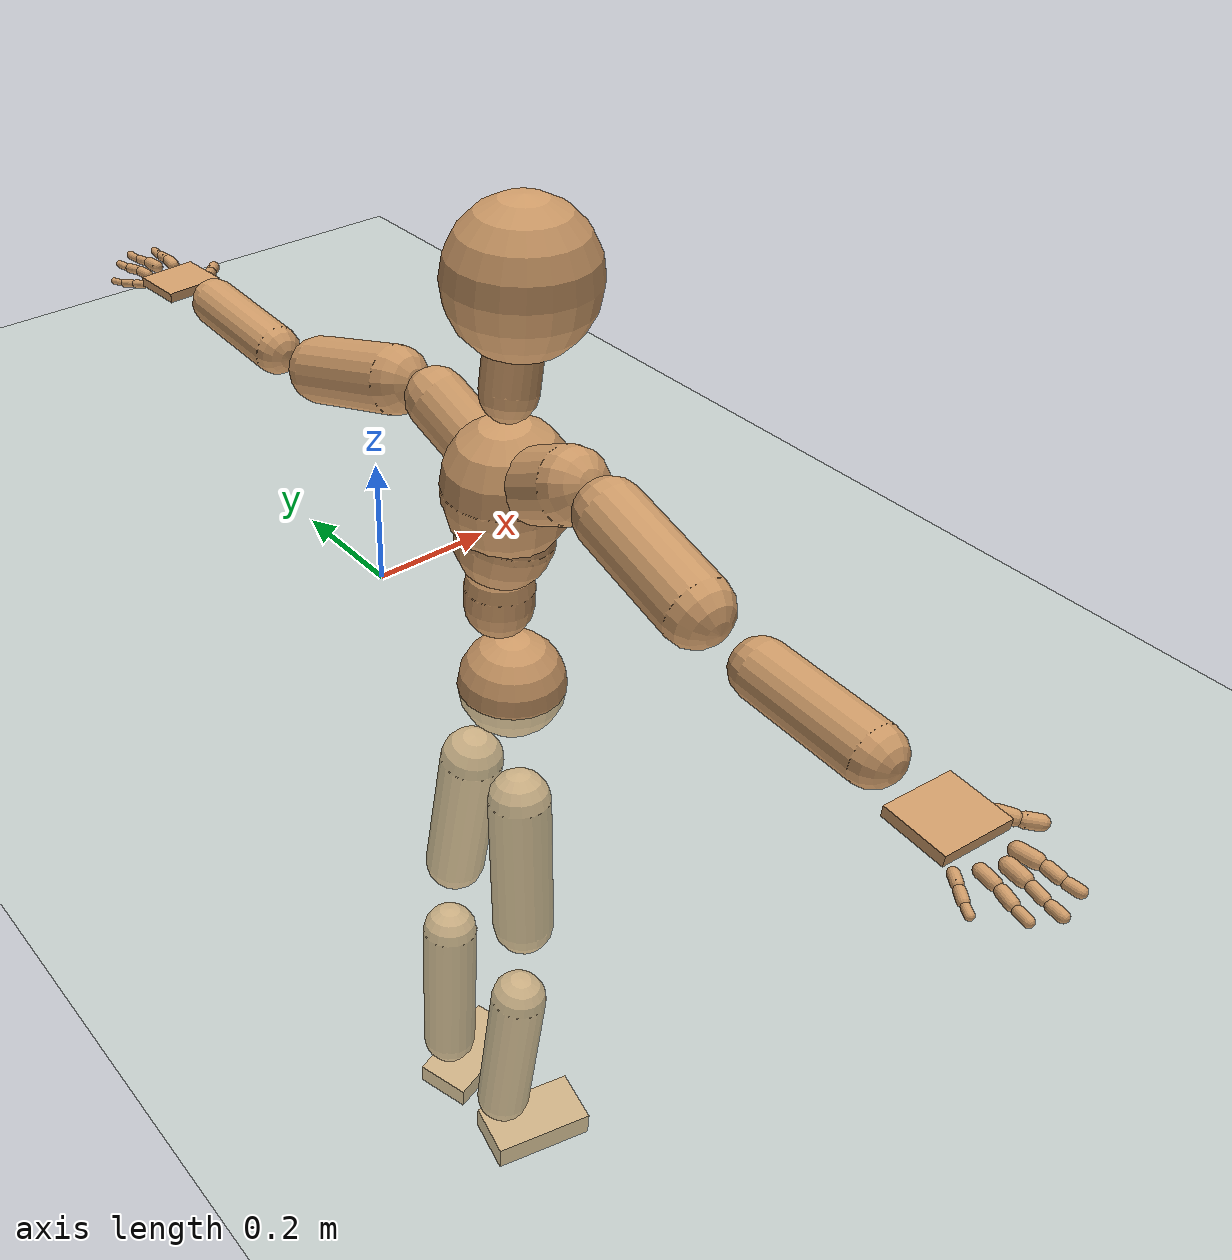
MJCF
<mujoco model="humanoid">
  <compiler coordinate="local" angle="radian"/>
  <default>
    <joint damping="0.0" armature="0.01" stiffness="0.0" limited="true"/>
    <geom conaffinity="1" condim="3" contype="7" margin="0.001" rgba="0.8 0.6 .4 1"/>
  </default>
  <asset>
    <texture type="skybox" builtin="gradient" rgb1=".4 .5 .6" rgb2="0 0 0" width="100" height="100"/>
    <texture builtin="flat" height="1278" mark="cross" markrgb="1 1 1" name="texgeom" random="0.01" rgb1="0.8 0.6 0.4" rgb2="0.8 0.6 0.4" type="cube" width="127"/>
    <texture builtin="checker" height="100" name="texplane" rgb1="0 0 0" rgb2="0.8 0.8 0.8" type="2d" width="100"/>
    <material name="MatPlane" reflectance="0.5" shininess="1" specular="1" texrepeat="60 60" texture="texplane"/>
    <material name="geom" texture="texgeom" texuniform="true"/>
  </asset>
  <worldbody>
    <light cutoff="100" diffuse="1 1 1" dir="-0 0 -1.3" directional="true" exponent="1" pos="0 0 1.3" specular=".1 .1 .1"/>
    <geom conaffinity="1" condim="3" name="floor" pos="0 0 0" rgba="0.8 0.9 0.8 1" size="100 100 .2" type="plane" material="MatPlane"/>
    <body name="Pelvis" pos="0.0004 -0.3276 0.0006">
      <freejoint name="Pelvis"/>
      <geom type="sphere" contype="1" conaffinity="1" density="500" size="0.0798" pos="0.0000 0.0000 0.0000" name="Pelvis"/>
      <body name="L_Hip" pos="-0.0272 0.0435 -0.0861">
        <joint name="L_Hip_x" type="hinge" pos="0 0 0" axis="1 0 0" stiffness="800" damping="80" armature="0.02" range="-180.0000 180.0000"/>
        <joint name="L_Hip_y" type="hinge" pos="0 0 0" axis="0 1 0" stiffness="800" damping="80" armature="0.02" range="-180.0000 180.0000"/>
        <joint name="L_Hip_z" type="hinge" pos="0 0 0" axis="0 0 1" stiffness="800" damping="80" armature="0.02" range="-180.0000 180.0000"/>
        <geom type="capsule" contype="1" conaffinity="1" density="500" fromto="-0.0018 0.0127 -0.0855 -0.0073 0.0509 -0.3419" size="0.049" name="L_Hip"/>
        <body name="L_Knee" pos="-0.0091 0.0636 -0.4274">
          <joint name="L_Knee_x" type="hinge" pos="0 0 0" axis="1 0 0" stiffness="800" damping="80" armature="0.02" range="-180.0000 180.0000"/>
          <joint name="L_Knee_y" type="hinge" pos="0 0 0" axis="0 1 0" stiffness="800" damping="80" armature="0.02" range="-180.0000 180.0000"/>
          <joint name="L_Knee_z" type="hinge" pos="0 0 0" axis="0 0 1" stiffness="800" damping="80" armature="0.02" range="-180.0000 180.0000"/>
          <geom type="capsule" contype="1" conaffinity="1" density="500" fromto="-0.0070 -0.0075 -0.0877 -0.0282 -0.0302 -0.3506" size="0.0468" name="L_Knee"/>
          <body name="L_Ankle" pos="-0.0352 -0.0377 -0.4383">
            <joint name="L_Ankle_x" type="hinge" pos="0 0 0" axis="1 0 0" stiffness="800" damping="80" armature="0.02" range="-180.0000 180.0000"/>
            <joint name="L_Ankle_y" type="hinge" pos="0 0 0" axis="0 1 0" stiffness="800" damping="80" armature="0.02" range="-180.0000 180.0000"/>
            <joint name="L_Ankle_z" type="hinge" pos="0 0 0" axis="0 0 1" stiffness="800" damping="80" armature="0.02" range="-180.0000 180.0000"/>
            <geom type="box" contype="1" conaffinity="1" density="500" pos="0.0664 0.0192 -0.0316" size="0.0902 0.0483 0.0205" quat="0.9901 0.0000 0.0000 0.1403" name="L_Ankle"/>
            <body name="L_Toe" pos="0.1327 0.0384 -0.0633">
              <joint name="L_Toe_x" type="hinge" pos="0 0 0" axis="1 0 0" stiffness="500" damping="50" armature="0.02" range="-180.0000 180.0000"/>
              <joint name="L_Toe_y" type="hinge" pos="0 0 0" axis="0 1 0" stiffness="500" damping="50" armature="0.02" range="-180.0000 180.0000"/>
              <joint name="L_Toe_z" type="hinge" pos="0 0 0" axis="0 0 1" stiffness="500" damping="50" armature="0.02" range="-180.0000 180.0000"/>
              <geom type="box" contype="1" conaffinity="1" density="500" pos="0.0000 0.0000 0.0318" size="0.0009 0.0023 0.001" quat="0.9894 0.0000 0.0000 0.1451" name="L_Toe"/>
            </body>
          </body>
        </body>
      </body>
      <body name="R_Hip" pos="-0.0225 -0.0448 -0.0956">
        <joint name="R_Hip_x" type="hinge" pos="0 0 0" axis="1 0 0" stiffness="800" damping="80" armature="0.02" range="-180.0000 180.0000"/>
        <joint name="R_Hip_y" type="hinge" pos="0 0 0" axis="0 1 0" stiffness="800" damping="80" armature="0.02" range="-180.0000 180.0000"/>
        <joint name="R_Hip_z" type="hinge" pos="0 0 0" axis="0 0 1" stiffness="800" damping="80" armature="0.02" range="-180.0000 180.0000"/>
        <geom type="capsule" contype="1" conaffinity="1" density="500" fromto="-0.0030 -0.0100 -0.0820 -0.0119 -0.0399 -0.3279" size="0.0483" name="R_Hip"/>
        <body name="R_Knee" pos="-0.0149 -0.0499 -0.4099">
          <joint name="R_Knee_x" type="hinge" pos="0 0 0" axis="1 0 0" stiffness="800" damping="80" armature="0.02" range="-180.0000 180.0000"/>
          <joint name="R_Knee_y" type="hinge" pos="0 0 0" axis="0 1 0" stiffness="800" damping="80" armature="0.02" range="-180.0000 180.0000"/>
          <joint name="R_Knee_z" type="hinge" pos="0 0 0" axis="0 0 1" stiffness="800" damping="80" armature="0.02" range="-180.0000 180.0000"/>
          <geom type="capsule" contype="1" conaffinity="1" density="500" fromto="-0.0067 0.0031 -0.0907 -0.0269 0.0125 -0.3628" size="0.0459" name="R_Knee"/>
          <body name="R_Ankle" pos="-0.0336 0.0156 -0.4535">
            <joint name="R_Ankle_x" type="hinge" pos="0 0 0" axis="1 0 0" stiffness="800" damping="80" armature="0.02" range="-180.0000 180.0000"/>
            <joint name="R_Ankle_y" type="hinge" pos="0 0 0" axis="0 1 0" stiffness="800" damping="80" armature="0.02" range="-180.0000 180.0000"/>
            <joint name="R_Ankle_z" type="hinge" pos="0 0 0" axis="0 0 1" stiffness="800" damping="80" armature="0.02" range="-180.0000 180.0000"/>
            <geom type="box" contype="1" conaffinity="1" density="500" pos="0.0694 -0.0159 -0.0312" size="0.0902 0.0483 0.0249" quat="0.9937 0.0000 0.0000 -0.1122" name="R_Ankle"/>
            <body name="R_Toe" pos="0.1388 -0.0318 -0.0624">
              <joint name="R_Toe_x" type="hinge" pos="0 0 0" axis="1 0 0" stiffness="500" damping="50" armature="0.02" range="-180.0000 180.0000"/>
              <joint name="R_Toe_y" type="hinge" pos="0 0 0" axis="0 1 0" stiffness="500" damping="50" armature="0.02" range="-180.0000 180.0000"/>
              <joint name="R_Toe_z" type="hinge" pos="0 0 0" axis="0 0 1" stiffness="500" damping="50" armature="0.02" range="-180.0000 180.0000"/>
              <geom type="box" contype="1" conaffinity="1" density="500" pos="0.0000 0.0000 0.0269" size="0.0009 0.0023 0.001" quat="0.9946 0.0000 0.0000 -0.1040" name="R_Toe"/>
            </body>
          </body>
        </body>
      </body>
      <body name="Torso" pos="-0.0269 0 0.0996">
        <joint name="Torso_x" type="hinge" pos="0 0 0" axis="1 0 0" stiffness="1000" damping="100" armature="0.02" range="-180.0000 180.0000"/>
        <joint name="Torso_y" type="hinge" pos="0 0 0" axis="0 1 0" stiffness="1000" damping="100" armature="0.02" range="-180.0000 180.0000"/>
        <joint name="Torso_z" type="hinge" pos="0 0 0" axis="0 0 1" stiffness="1000" damping="100" armature="0.02" range="-180.0000 180.0000"/>
        <geom type="capsule" contype="1" conaffinity="1" density="500" fromto="0.0021 0.0013 0.0804 0.0014 0.0009 0.0536" size="0.0494" name="Torso"/>
        <body name="Spine" pos="0.0035 0.0022 0.134">
          <joint name="Spine_x" type="hinge" pos="0 0 0" axis="1 0 0" stiffness="1000" damping="100" armature="0.02" range="-180.0000 180.0000"/>
          <joint name="Spine_y" type="hinge" pos="0 0 0" axis="0 1 0" stiffness="1000" damping="100" armature="0.02" range="-180.0000 180.0000"/>
          <joint name="Spine_z" type="hinge" pos="0 0 0" axis="0 0 1" stiffness="1000" damping="100" armature="0.02" range="-180.0000 180.0000"/>
          <geom type="capsule" contype="1" conaffinity="1" density="500" fromto="0.0058 -0.0028 0.0312 0.0039 -0.0019 0.0208" size="0.0686" name="Spine"/>
          <body name="Chest" pos="0.0097 -0.0047 0.052">
            <joint name="Chest_x" type="hinge" pos="0 0 0" axis="1 0 0" stiffness="1000" damping="100" armature="0.02" range="-180.0000 180.0000"/>
            <joint name="Chest_y" type="hinge" pos="0 0 0" axis="0 1 0" stiffness="1000" damping="100" armature="0.02" range="-180.0000 180.0000"/>
            <joint name="Chest_z" type="hinge" pos="0 0 0" axis="0 0 1" stiffness="1000" damping="100" armature="0.02" range="-180.0000 180.0000"/>
            <geom type="capsule" contype="1" conaffinity="1" density="500" fromto="-0.0047 -0.0004 0.0584 -0.0032 -0.0003 0.0389" size="0.0881" name="Chest"/>
            <body name="Neck" pos="-0.0131 -0.005 0.1516">
              <joint name="Neck_x" type="hinge" pos="0 0 0" axis="1 0 0" stiffness="500" damping="50" armature="0.02" range="-180.0000 180.0000"/>
              <joint name="Neck_y" type="hinge" pos="0 0 0" axis="0 1 0" stiffness="500" damping="50" armature="0.02" range="-180.0000 180.0000"/>
              <joint name="Neck_z" type="hinge" pos="0 0 0" axis="0 0 1" stiffness="500" damping="50" armature="0.02" range="-180.0000 180.0000"/>
              <geom type="capsule" contype="1" conaffinity="1" density="500" fromto="0.0072 0.0038 0.0329 0.0287 0.0151 0.1315" size="0.0384" name="Neck"/>
              <body name="Head" pos="0.0358 0.0189 0.1644">
                <joint name="Head_x" type="hinge" pos="0 0 0" axis="1 0 0" stiffness="500" damping="50" armature="0.02" range="-180.0000 180.0000"/>
                <joint name="Head_y" type="hinge" pos="0 0 0" axis="0 1 0" stiffness="500" damping="50" armature="0.02" range="-180.0000 180.0000"/>
                <joint name="Head_z" type="hinge" pos="0 0 0" axis="0 0 1" stiffness="500" damping="50" armature="0.02" range="-180.0000 180.0000"/>
                <geom type="sphere" contype="1" conaffinity="1" density="500" size="0.0992" pos="0.0000 0.0000 0.0000" name="Head"/>
              </body>
            </body>
            <body name="L_Thorax" pos="-0.0029 0.0388 0.0702">
              <joint name="L_Thorax_x" type="hinge" pos="0 0 0" axis="1 0 0" stiffness="500" damping="50" armature="0.02" range="-180.0000 180.0000"/>
              <joint name="L_Thorax_y" type="hinge" pos="0 0 0" axis="0 1 0" stiffness="500" damping="50" armature="0.02" range="-180.0000 180.0000"/>
              <joint name="L_Thorax_z" type="hinge" pos="0 0 0" axis="0 0 1" stiffness="500" damping="50" armature="0.02" range="-180.0000 180.0000"/>
              <geom type="capsule" contype="1" conaffinity="1" density="500" fromto="-0.0028 0.0246 0.0119 -0.0113 0.0984 0.0478" size="0.0424" name="L_Thorax"/>
              <body name="L_Shoulder" pos="-0.0141 0.1229 0.0597">
                <joint name="L_Shoulder_x" type="hinge" pos="0 0 0" axis="1 0 0" stiffness="500" damping="50" armature="0.02" range="-180.0000 180.0000"/>
                <joint name="L_Shoulder_y" type="hinge" pos="0 0 0" axis="0 1 0" stiffness="500" damping="50" armature="0.02" range="-180.0000 180.0000"/>
                <joint name="L_Shoulder_z" type="hinge" pos="0 0 0" axis="0 0 1" stiffness="500" damping="50" armature="0.02" range="-180.0000 180.0000"/>
                <geom type="capsule" contype="1" conaffinity="1" density="500" fromto="-0.0068 0.0521 -0.0145 -0.0272 0.2083 -0.0579" size="0.0466" name="L_Shoulder"/>
                <body name="L_Elbow" pos="-0.034 0.2604 -0.0724">
                  <joint name="L_Elbow_x" type="hinge" pos="0 0 0" axis="1 0 0" stiffness="500" damping="50" armature="0.02" range="-720.0000 720.0000"/>
                  <joint name="L_Elbow_y" type="hinge" pos="0 0 0" axis="0 1 0" stiffness="500" damping="50" armature="0.02" range="-720.0000 720.0000"/>
                  <joint name="L_Elbow_z" type="hinge" pos="0 0 0" axis="0 0 1" stiffness="500" damping="50" armature="0.02" range="-720.0000 720.0000"/>
                  <geom type="capsule" contype="1" conaffinity="1" density="500" fromto="-0.0013 0.0554 0.0040 -0.0053 0.2217 0.0158" size="0.0352" name="L_Elbow"/>
                  <body name="L_Wrist" pos="-0.0066 0.2771 0.0198">
                    <joint name="L_Wrist_x" type="hinge" pos="0 0 0" axis="1 0 0" stiffness="300" damping="30" armature="0.02" range="-180.0000 180.0000"/>
                    <joint name="L_Wrist_y" type="hinge" pos="0 0 0" axis="0 1 0" stiffness="300" damping="30" armature="0.02" range="-180.0000 180.0000"/>
                    <joint name="L_Wrist_z" type="hinge" pos="0 0 0" axis="0 0 1" stiffness="300" damping="30" armature="0.02" range="-180.0000 180.0000"/>
                    <geom type="box" contype="1" conaffinity="1" density="500" pos="-0.0031 0.0442 -0.0059" size="0.0399 0.044 0.0069" quat="0.7316 0.0000 0.0000 -0.6818" name="L_Wrist"/>
                    <body name="L_Index1" pos="0.0187 0.1034 -0.009">
                      <joint name="L_Index1_x" type="hinge" pos="0 0 0" axis="1 0 0" stiffness="100" damping="10" armature="0.02" range="-180.0000 180.0000"/>
                      <joint name="L_Index1_y" type="hinge" pos="0 0 0" axis="0 1 0" stiffness="100" damping="10" armature="0.02" range="-180.0000 180.0000"/>
                      <joint name="L_Index1_z" type="hinge" pos="0 0 0" axis="0 0 1" stiffness="100" damping="10" armature="0.02" range="-180.0000 180.0000"/>
                      <geom type="capsule" contype="1" conaffinity="1" density="500" fromto="0.0007 0.0066 0.0003 0.0028 0.0264 0.0010" size="0.0089" name="L_Index1"/>
                      <body name="L_Index2" pos="0.0034 0.033 0.0013">
                        <joint name="L_Index2_x" type="hinge" pos="0 0 0" axis="1 0 0" stiffness="100" damping="10" armature="0.02" range="-180.0000 180.0000"/>
                        <joint name="L_Index2_y" type="hinge" pos="0 0 0" axis="0 1 0" stiffness="100" damping="10" armature="0.02" range="-180.0000 180.0000"/>
                        <joint name="L_Index2_z" type="hinge" pos="0 0 0" axis="0 0 1" stiffness="100" damping="10" armature="0.02" range="-180.0000 180.0000"/>
                        <geom type="capsule" contype="1" conaffinity="1" density="500" fromto="-0.0000 0.0047 -0.0005 -0.0000 0.0187 -0.0021" size="0.0074" name="L_Index2"/>
                        <body name="L_Index3" pos="0 0.0234 -0.0026">
                          <joint name="L_Index3_x" type="hinge" pos="0 0 0" axis="1 0 0" stiffness="100" damping="10" armature="0.02" range="-180.0000 180.0000"/>
                          <joint name="L_Index3_y" type="hinge" pos="0 0 0" axis="0 1 0" stiffness="100" damping="10" armature="0.02" range="-180.0000 180.0000"/>
                          <joint name="L_Index3_z" type="hinge" pos="0 0 0" axis="0 0 1" stiffness="100" damping="10" armature="0.02" range="-180.0000 180.0000"/>
                          <geom type="capsule" contype="1" conaffinity="1" density="500" fromto="0.0004 0.0051 -0.0001 0.0016 0.0203 -0.0005" size="0.0064" name="L_Index3"/>
                        </body>
                      </body>
                    </body>
                    <body name="L_Middle1" pos="-0.0043 0.1115 -0.007">
                      <joint name="L_Middle1_x" type="hinge" pos="0 0 0" axis="1 0 0" stiffness="100" damping="10" armature="0.02" range="-180.0000 180.0000"/>
                      <joint name="L_Middle1_y" type="hinge" pos="0 0 0" axis="0 1 0" stiffness="100" damping="10" armature="0.02" range="-180.0000 180.0000"/>
                      <joint name="L_Middle1_z" type="hinge" pos="0 0 0" axis="0 0 1" stiffness="100" damping="10" armature="0.02" range="-180.0000 180.0000"/>
                      <geom type="capsule" contype="1" conaffinity="1" density="500" fromto="-0.0009 0.0063 -0.0000 -0.0035 0.0253 -0.0000" size="0.009" name="L_Middle1"/>
                      <body name="L_Middle2" pos="-0.0044 0.0316 0">
                        <joint name="L_Middle2_x" type="hinge" pos="0 0 0" axis="1 0 0" stiffness="100" damping="10" armature="0.02" range="-180.0000 180.0000"/>
                        <joint name="L_Middle2_y" type="hinge" pos="0 0 0" axis="0 1 0" stiffness="100" damping="10" armature="0.02" range="-180.0000 180.0000"/>
                        <joint name="L_Middle2_z" type="hinge" pos="0 0 0" axis="0 0 1" stiffness="100" damping="10" armature="0.02" range="-180.0000 180.0000"/>
                        <geom type="capsule" contype="1" conaffinity="1" density="500" fromto="-0.0009 0.0049 -0.0005 -0.0035 0.0195 -0.0020" size="0.0068" name="L_Middle2"/>
                        <body name="L_Middle3" pos="-0.0044 0.0244 -0.0025">
                          <joint name="L_Middle3_x" type="hinge" pos="0 0 0" axis="1 0 0" stiffness="100" damping="10" armature="0.02" range="-180.0000 180.0000"/>
                          <joint name="L_Middle3_y" type="hinge" pos="0 0 0" axis="0 1 0" stiffness="100" damping="10" armature="0.02" range="-180.0000 180.0000"/>
                          <joint name="L_Middle3_z" type="hinge" pos="0 0 0" axis="0 0 1" stiffness="100" damping="10" armature="0.02" range="-180.0000 180.0000"/>
                          <geom type="capsule" contype="1" conaffinity="1" density="500" fromto="-0.0005 0.0053 -0.0001 -0.0019 0.0211 -0.0004" size="0.0062" name="L_Middle3"/>
                        </body>
                      </body>
                    </body>
                    <body name="L_Pinky1" pos="-0.0436 0.0866 -0.0146">
                      <joint name="L_Pinky1_x" type="hinge" pos="0 0 0" axis="1 0 0" stiffness="100" damping="10" armature="0.02" range="-180.0000 180.0000"/>
                      <joint name="L_Pinky1_y" type="hinge" pos="0 0 0" axis="0 1 0" stiffness="100" damping="10" armature="0.02" range="-180.0000 180.0000"/>
                      <joint name="L_Pinky1_z" type="hinge" pos="0 0 0" axis="0 0 1" stiffness="100" damping="10" armature="0.02" range="-180.0000 180.0000"/>
                      <geom type="capsule" contype="1" conaffinity="1" density="500" fromto="-0.0023 0.0033 -0.0003 -0.0093 0.0133 -0.0012" size="0.0065" name="L_Pinky1"/>
                      <body name="L_Pinky2" pos="-0.0117 0.0166 -0.0015">
                        <joint name="L_Pinky2_x" type="hinge" pos="0 0 0" axis="1 0 0" stiffness="100" damping="10" armature="0.02" range="-180.0000 180.0000"/>
                        <joint name="L_Pinky2_y" type="hinge" pos="0 0 0" axis="0 1 0" stiffness="100" damping="10" armature="0.02" range="-180.0000 180.0000"/>
                        <joint name="L_Pinky2_z" type="hinge" pos="0 0 0" axis="0 0 1" stiffness="100" damping="10" armature="0.02" range="-180.0000 180.0000"/>
                        <geom type="capsule" contype="1" conaffinity="1" density="500" fromto="-0.0022 0.0033 -0.0003 -0.0089 0.0130 -0.0013" size="0.0063" name="L_Pinky2"/>
                        <body name="L_Pinky3" pos="-0.0111 0.0163 -0.0016">
                          <joint name="L_Pinky3_x" type="hinge" pos="0 0 0" axis="1 0 0" stiffness="100" damping="10" armature="0.02" range="-180.0000 180.0000"/>
                          <joint name="L_Pinky3_y" type="hinge" pos="0 0 0" axis="0 1 0" stiffness="100" damping="10" armature="0.02" range="-180.0000 180.0000"/>
                          <joint name="L_Pinky3_z" type="hinge" pos="0 0 0" axis="0 0 1" stiffness="100" damping="10" armature="0.02" range="-180.0000 180.0000"/>
                          <geom type="capsule" contype="1" conaffinity="1" density="500" fromto="-0.0018 0.0037 0.0001 -0.0073 0.0146 0.0003" size="0.0049" name="L_Pinky3"/>
                        </body>
                      </body>
                    </body>
                    <body name="L_Ring1" pos="-0.0272 0.0997 -0.0098">
                      <joint name="L_Ring1_x" type="hinge" pos="0 0 0" axis="1 0 0" stiffness="100" damping="10" armature="0.02" range="-180.0000 180.0000"/>
                      <joint name="L_Ring1_y" type="hinge" pos="0 0 0" axis="0 1 0" stiffness="100" damping="10" armature="0.02" range="-180.0000 180.0000"/>
                      <joint name="L_Ring1_z" type="hinge" pos="0 0 0" axis="0 0 1" stiffness="100" damping="10" armature="0.02" range="-180.0000 180.0000"/>
                      <geom type="capsule" contype="1" conaffinity="1" density="500" fromto="-0.0010 0.0058 0.0000 -0.0040 0.0232 0.0002" size="0.0077" name="L_Ring1"/>
                      <body name="L_Ring2" pos="-0.005 0.029 0.0002">
                        <joint name="L_Ring2_x" type="hinge" pos="0 0 0" axis="1 0 0" stiffness="100" damping="10" armature="0.02" range="-180.0000 180.0000"/>
                        <joint name="L_Ring2_y" type="hinge" pos="0 0 0" axis="0 1 0" stiffness="100" damping="10" armature="0.02" range="-180.0000 180.0000"/>
                        <joint name="L_Ring2_z" type="hinge" pos="0 0 0" axis="0 0 1" stiffness="100" damping="10" armature="0.02" range="-180.0000 180.0000"/>
                        <geom type="capsule" contype="1" conaffinity="1" density="500" fromto="-0.0013 0.0047 -0.0004 -0.0054 0.0189 -0.0017" size="0.0073" name="L_Ring2"/>
                        <body name="L_Ring3" pos="-0.0067 0.0237 -0.0022">
                          <joint name="L_Ring3_x" type="hinge" pos="0 0 0" axis="1 0 0" stiffness="100" damping="10" armature="0.02" range="-180.0000 180.0000"/>
                          <joint name="L_Ring3_y" type="hinge" pos="0 0 0" axis="0 1 0" stiffness="100" damping="10" armature="0.02" range="-180.0000 180.0000"/>
                          <joint name="L_Ring3_z" type="hinge" pos="0 0 0" axis="0 0 1" stiffness="100" damping="10" armature="0.02" range="-180.0000 180.0000"/>
                          <geom type="capsule" contype="1" conaffinity="1" density="500" fromto="-0.0009 0.0051 -0.0000 -0.0038 0.0205 -0.0001" size="0.0058" name="L_Ring3"/>
                        </body>
                      </body>
                    </body>
                    <body name="L_Thumb1" pos="0.0251 0.0412 -0.0187">
                      <joint name="L_Thumb1_x" type="hinge" pos="0 0 0" axis="1 0 0" stiffness="100" damping="10" armature="0.02" range="-180.0000 180.0000"/>
                      <joint name="L_Thumb1_y" type="hinge" pos="0 0 0" axis="0 1 0" stiffness="100" damping="10" armature="0.02" range="-180.0000 180.0000"/>
                      <joint name="L_Thumb1_z" type="hinge" pos="0 0 0" axis="0 0 1" stiffness="100" damping="10" armature="0.02" range="-180.0000 180.0000"/>
                      <geom type="capsule" contype="1" conaffinity="1" density="500" fromto="0.0053 0.0034 0.0002 0.0210 0.0136 0.0008" size="0.0117" name="L_Thumb1"/>
                      <body name="L_Thumb2" pos="0.0263 0.017 0.001">
                        <joint name="L_Thumb2_x" type="hinge" pos="0 0 0" axis="1 0 0" stiffness="100" damping="10" armature="0.02" range="-180.0000 180.0000"/>
                        <joint name="L_Thumb2_y" type="hinge" pos="0 0 0" axis="0 1 0" stiffness="100" damping="10" armature="0.02" range="-180.0000 180.0000"/>
                        <joint name="L_Thumb2_z" type="hinge" pos="0 0 0" axis="0 0 1" stiffness="100" damping="10" armature="0.02" range="-180.0000 180.0000"/>
                        <geom type="capsule" contype="1" conaffinity="1" density="500" fromto="0.0034 0.0042 -0.0009 0.0135 0.0167 -0.0036" size="0.0093" name="L_Thumb2"/>
                        <body name="L_Thumb3" pos="0.0169 0.0209 -0.0045">
                          <joint name="L_Thumb3_x" type="hinge" pos="0 0 0" axis="1 0 0" stiffness="100" damping="10" armature="0.02" range="-180.0000 180.0000"/>
                          <joint name="L_Thumb3_y" type="hinge" pos="0 0 0" axis="0 1 0" stiffness="100" damping="10" armature="0.02" range="-180.0000 180.0000"/>
                          <joint name="L_Thumb3_z" type="hinge" pos="0 0 0" axis="0 0 1" stiffness="100" damping="10" armature="0.02" range="-180.0000 180.0000"/>
                          <geom type="capsule" contype="1" conaffinity="1" density="500" fromto="0.0038 0.0046 -0.0005 0.0151 0.0183 -0.0020" size="0.0087" name="L_Thumb3"/>
                        </body>
                      </body>
                    </body>
                  </body>
                </body>
              </body>
            </body>
            <body name="R_Thorax" pos="-0.0077 -0.0359 0.0702">
              <joint name="R_Thorax_x" type="hinge" pos="0 0 0" axis="1 0 0" stiffness="500" damping="50" armature="0.02" range="-180.0000 180.0000"/>
              <joint name="R_Thorax_y" type="hinge" pos="0 0 0" axis="0 1 0" stiffness="500" damping="50" armature="0.02" range="-180.0000 180.0000"/>
              <joint name="R_Thorax_z" type="hinge" pos="0 0 0" axis="0 0 1" stiffness="500" damping="50" armature="0.02" range="-180.0000 180.0000"/>
              <geom type="capsule" contype="1" conaffinity="1" density="500" fromto="-0.0010 -0.0231 0.0119 -0.0039 -0.0925 0.0475" size="0.0496" name="R_Thorax"/>
              <body name="R_Shoulder" pos="-0.0049 -0.1156 0.0593">
                <joint name="R_Shoulder_x" type="hinge" pos="0 0 0" axis="1 0 0" stiffness="500" damping="50" armature="0.02" range="-180.0000 180.0000"/>
                <joint name="R_Shoulder_y" type="hinge" pos="0 0 0" axis="0 1 0" stiffness="500" damping="50" armature="0.02" range="-180.0000 180.0000"/>
                <joint name="R_Shoulder_z" type="hinge" pos="0 0 0" axis="0 0 1" stiffness="500" damping="50" armature="0.02" range="-180.0000 180.0000"/>
                <geom type="capsule" contype="1" conaffinity="1" density="500" fromto="-0.0060 -0.0552 -0.0099 -0.0240 -0.2209 -0.0398" size="0.0456" name="R_Shoulder"/>
                <body name="R_Elbow" pos="-0.03 -0.2761 -0.0497">
                  <joint name="R_Elbow_x" type="hinge" pos="0 0 0" axis="1 0 0" stiffness="500" damping="50" armature="0.02" range="-720.0000 720.0000"/>
                  <joint name="R_Elbow_y" type="hinge" pos="0 0 0" axis="0 1 0" stiffness="500" damping="50" armature="0.02" range="-720.0000 720.0000"/>
                  <joint name="R_Elbow_z" type="hinge" pos="0 0 0" axis="0 0 1" stiffness="500" damping="50" armature="0.02" range="-720.0000 720.0000"/>
                  <geom type="capsule" contype="1" conaffinity="1" density="500" fromto="-0.0028 -0.0536 0.0001 -0.0113 -0.2142 0.0004" size="0.0361" name="R_Elbow"/>
                  <body name="R_Wrist" pos="-0.0141 -0.2678 0.0005">
                    <joint name="R_Wrist_x" type="hinge" pos="0 0 0" axis="1 0 0" stiffness="300" damping="30" armature="0.02" range="-180.0000 180.0000"/>
                    <joint name="R_Wrist_y" type="hinge" pos="0 0 0" axis="0 1 0" stiffness="300" damping="30" armature="0.02" range="-180.0000 180.0000"/>
                    <joint name="R_Wrist_z" type="hinge" pos="0 0 0" axis="0 0 1" stiffness="300" damping="30" armature="0.02" range="-180.0000 180.0000"/>
                    <geom type="box" contype="1" conaffinity="1" density="500" pos="-0.0036 -0.0441 -0.0074" size="0.0399 0.0453 0.007" quat="0.7350 0.0000 0.0000 0.6781" name="R_Wrist"/>
                    <body name="R_Index1" pos="0.0179 -0.1031 -0.012">
                      <joint name="R_Index1_x" type="hinge" pos="0 0 0" axis="1 0 0" stiffness="100" damping="10" armature="0.02" range="-180.0000 180.0000"/>
                      <joint name="R_Index1_y" type="hinge" pos="0 0 0" axis="0 1 0" stiffness="100" damping="10" armature="0.02" range="-180.0000 180.0000"/>
                      <joint name="R_Index1_z" type="hinge" pos="0 0 0" axis="0 0 1" stiffness="100" damping="10" armature="0.02" range="-180.0000 180.0000"/>
                      <geom type="capsule" contype="1" conaffinity="1" density="500" fromto="0.0007 -0.0066 0.0003 0.0028 -0.0264 0.0010" size="0.0089" name="R_Index1"/>
                      <body name="R_Index2" pos="0.0034 -0.033 0.0013">
                        <joint name="R_Index2_x" type="hinge" pos="0 0 0" axis="1 0 0" stiffness="100" damping="10" armature="0.02" range="-180.0000 180.0000"/>
                        <joint name="R_Index2_y" type="hinge" pos="0 0 0" axis="0 1 0" stiffness="100" damping="10" armature="0.02" range="-180.0000 180.0000"/>
                        <joint name="R_Index2_z" type="hinge" pos="0 0 0" axis="0 0 1" stiffness="100" damping="10" armature="0.02" range="-180.0000 180.0000"/>
                        <geom type="capsule" contype="1" conaffinity="1" density="500" fromto="-0.0000 -0.0047 -0.0005 -0.0000 -0.0187 -0.0021" size="0.0074" name="R_Index2"/>
                        <body name="R_Index3" pos="0 -0.0234 -0.0026">
                          <joint name="R_Index3_x" type="hinge" pos="0 0 0" axis="1 0 0" stiffness="100" damping="10" armature="0.02" range="-180.0000 180.0000"/>
                          <joint name="R_Index3_y" type="hinge" pos="0 0 0" axis="0 1 0" stiffness="100" damping="10" armature="0.02" range="-180.0000 180.0000"/>
                          <joint name="R_Index3_z" type="hinge" pos="0 0 0" axis="0 0 1" stiffness="100" damping="10" armature="0.02" range="-180.0000 180.0000"/>
                          <geom type="capsule" contype="1" conaffinity="1" density="500" fromto="0.0004 -0.0043 -0.0001 0.0016 -0.0171 -0.0005" size="0.0067" name="R_Index3"/>
                        </body>
                      </body>
                    </body>
                    <body name="R_Middle1" pos="-0.0052 -0.1113 -0.01">
                      <joint name="R_Middle1_x" type="hinge" pos="0 0 0" axis="1 0 0" stiffness="100" damping="10" armature="0.02" range="-180.0000 180.0000"/>
                      <joint name="R_Middle1_y" type="hinge" pos="0 0 0" axis="0 1 0" stiffness="100" damping="10" armature="0.02" range="-180.0000 180.0000"/>
                      <joint name="R_Middle1_z" type="hinge" pos="0 0 0" axis="0 0 1" stiffness="100" damping="10" armature="0.02" range="-180.0000 180.0000"/>
                      <geom type="capsule" contype="1" conaffinity="1" density="500" fromto="-0.0009 -0.0063 -0.0000 -0.0035 -0.0253 -0.0000" size="0.009" name="R_Middle1"/>
                      <body name="R_Middle2" pos="-0.0044 -0.0316 0">
                        <joint name="R_Middle2_x" type="hinge" pos="0 0 0" axis="1 0 0" stiffness="100" damping="10" armature="0.02" range="-180.0000 180.0000"/>
                        <joint name="R_Middle2_y" type="hinge" pos="0 0 0" axis="0 1 0" stiffness="100" damping="10" armature="0.02" range="-180.0000 180.0000"/>
                        <joint name="R_Middle2_z" type="hinge" pos="0 0 0" axis="0 0 1" stiffness="100" damping="10" armature="0.02" range="-180.0000 180.0000"/>
                        <geom type="capsule" contype="1" conaffinity="1" density="500" fromto="-0.0009 -0.0049 -0.0005 -0.0035 -0.0195 -0.0020" size="0.0068" name="R_Middle2"/>
                        <body name="R_Middle3" pos="-0.0044 -0.0244 -0.0025">
                          <joint name="R_Middle3_x" type="hinge" pos="0 0 0" axis="1 0 0" stiffness="100" damping="10" armature="0.02" range="-180.0000 180.0000"/>
                          <joint name="R_Middle3_y" type="hinge" pos="0 0 0" axis="0 1 0" stiffness="100" damping="10" armature="0.02" range="-180.0000 180.0000"/>
                          <joint name="R_Middle3_z" type="hinge" pos="0 0 0" axis="0 0 1" stiffness="100" damping="10" armature="0.02" range="-180.0000 180.0000"/>
                          <geom type="capsule" contype="1" conaffinity="1" density="500" fromto="-0.0005 -0.0045 -0.0001 -0.0019 -0.0179 -0.0004" size="0.0065" name="R_Middle3"/>
                        </body>
                      </body>
                    </body>
                    <body name="R_Pinky1" pos="-0.0445 -0.0863 -0.0177">
                      <joint name="R_Pinky1_x" type="hinge" pos="0 0 0" axis="1 0 0" stiffness="100" damping="10" armature="0.02" range="-180.0000 180.0000"/>
                      <joint name="R_Pinky1_y" type="hinge" pos="0 0 0" axis="0 1 0" stiffness="100" damping="10" armature="0.02" range="-180.0000 180.0000"/>
                      <joint name="R_Pinky1_z" type="hinge" pos="0 0 0" axis="0 0 1" stiffness="100" damping="10" armature="0.02" range="-180.0000 180.0000"/>
                      <geom type="capsule" contype="1" conaffinity="1" density="500" fromto="-0.0023 -0.0033 -0.0003 -0.0093 -0.0133 -0.0012" size="0.0065" name="R_Pinky1"/>
                      <body name="R_Pinky2" pos="-0.0117 -0.0166 -0.0015">
                        <joint name="R_Pinky2_x" type="hinge" pos="0 0 0" axis="1 0 0" stiffness="100" damping="10" armature="0.02" range="-180.0000 180.0000"/>
                        <joint name="R_Pinky2_y" type="hinge" pos="0 0 0" axis="0 1 0" stiffness="100" damping="10" armature="0.02" range="-180.0000 180.0000"/>
                        <joint name="R_Pinky2_z" type="hinge" pos="0 0 0" axis="0 0 1" stiffness="100" damping="10" armature="0.02" range="-180.0000 180.0000"/>
                        <geom type="capsule" contype="1" conaffinity="1" density="500" fromto="-0.0022 -0.0033 -0.0003 -0.0089 -0.0130 -0.0013" size="0.0063" name="R_Pinky2"/>
                        <body name="R_Pinky3" pos="-0.0111 -0.0163 -0.0016">
                          <joint name="R_Pinky3_x" type="hinge" pos="0 0 0" axis="1 0 0" stiffness="100" damping="10" armature="0.02" range="-180.0000 180.0000"/>
                          <joint name="R_Pinky3_y" type="hinge" pos="0 0 0" axis="0 1 0" stiffness="100" damping="10" armature="0.02" range="-180.0000 180.0000"/>
                          <joint name="R_Pinky3_z" type="hinge" pos="0 0 0" axis="0 0 1" stiffness="100" damping="10" armature="0.02" range="-180.0000 180.0000"/>
                          <geom type="capsule" contype="1" conaffinity="1" density="500" fromto="-0.0018 -0.0029 0.0001 -0.0073 -0.0114 0.0003" size="0.0051" name="R_Pinky3"/>
                        </body>
                      </body>
                    </body>
                    <body name="R_Ring1" pos="-0.028 -0.0994 -0.0129">
                      <joint name="R_Ring1_x" type="hinge" pos="0 0 0" axis="1 0 0" stiffness="100" damping="10" armature="0.02" range="-180.0000 180.0000"/>
                      <joint name="R_Ring1_y" type="hinge" pos="0 0 0" axis="0 1 0" stiffness="100" damping="10" armature="0.02" range="-180.0000 180.0000"/>
                      <joint name="R_Ring1_z" type="hinge" pos="0 0 0" axis="0 0 1" stiffness="100" damping="10" armature="0.02" range="-180.0000 180.0000"/>
                      <geom type="capsule" contype="1" conaffinity="1" density="500" fromto="-0.0010 -0.0058 0.0000 -0.0040 -0.0232 0.0002" size="0.0077" name="R_Ring1"/>
                      <body name="R_Ring2" pos="-0.005 -0.029 0.0002">
                        <joint name="R_Ring2_x" type="hinge" pos="0 0 0" axis="1 0 0" stiffness="100" damping="10" armature="0.02" range="-180.0000 180.0000"/>
                        <joint name="R_Ring2_y" type="hinge" pos="0 0 0" axis="0 1 0" stiffness="100" damping="10" armature="0.02" range="-180.0000 180.0000"/>
                        <joint name="R_Ring2_z" type="hinge" pos="0 0 0" axis="0 0 1" stiffness="100" damping="10" armature="0.02" range="-180.0000 180.0000"/>
                        <geom type="capsule" contype="1" conaffinity="1" density="500" fromto="-0.0014 -0.0047 -0.0004 -0.0054 -0.0189 -0.0017" size="0.0073" name="R_Ring2"/>
                        <body name="R_Ring3" pos="-0.0068 -0.0237 -0.0022">
                          <joint name="R_Ring3_x" type="hinge" pos="0 0 0" axis="1 0 0" stiffness="100" damping="10" armature="0.02" range="-180.0000 180.0000"/>
                          <joint name="R_Ring3_y" type="hinge" pos="0 0 0" axis="0 1 0" stiffness="100" damping="10" armature="0.02" range="-180.0000 180.0000"/>
                          <joint name="R_Ring3_z" type="hinge" pos="0 0 0" axis="0 0 1" stiffness="100" damping="10" armature="0.02" range="-180.0000 180.0000"/>
                          <geom type="capsule" contype="1" conaffinity="1" density="500" fromto="-0.0010 -0.0043 -0.0000 -0.0038 -0.0173 -0.0001" size="0.006" name="R_Ring3"/>
                        </body>
                      </body>
                    </body>
                    <body name="R_Thumb1" pos="0.0243 -0.0409 -0.0217">
                      <joint name="R_Thumb1_x" type="hinge" pos="0 0 0" axis="1 0 0" stiffness="100" damping="10" armature="0.02" range="-180.0000 180.0000"/>
                      <joint name="R_Thumb1_y" type="hinge" pos="0 0 0" axis="0 1 0" stiffness="100" damping="10" armature="0.02" range="-180.0000 180.0000"/>
                      <joint name="R_Thumb1_z" type="hinge" pos="0 0 0" axis="0 0 1" stiffness="100" damping="10" armature="0.02" range="-180.0000 180.0000"/>
                      <geom type="capsule" contype="1" conaffinity="1" density="500" fromto="0.0053 -0.0034 0.0002 0.0210 -0.0136 0.0008" size="0.0117" name="R_Thumb1"/>
                      <body name="R_Thumb2" pos="0.0263 -0.017 0.001">
                        <joint name="R_Thumb2_x" type="hinge" pos="0 0 0" axis="1 0 0" stiffness="100" damping="10" armature="0.02" range="-180.0000 180.0000"/>
                        <joint name="R_Thumb2_y" type="hinge" pos="0 0 0" axis="0 1 0" stiffness="100" damping="10" armature="0.02" range="-180.0000 180.0000"/>
                        <joint name="R_Thumb2_z" type="hinge" pos="0 0 0" axis="0 0 1" stiffness="100" damping="10" armature="0.02" range="-180.0000 180.0000"/>
                        <geom type="capsule" contype="1" conaffinity="1" density="500" fromto="0.0034 -0.0042 -0.0009 0.0135 -0.0167 -0.0036" size="0.0093" name="R_Thumb2"/>
                        <body name="R_Thumb3" pos="0.0169 -0.0209 -0.0045">
                          <joint name="R_Thumb3_x" type="hinge" pos="0 0 0" axis="1 0 0" stiffness="100" damping="10" armature="0.02" range="-180.0000 180.0000"/>
                          <joint name="R_Thumb3_y" type="hinge" pos="0 0 0" axis="0 1 0" stiffness="100" damping="10" armature="0.02" range="-180.0000 180.0000"/>
                          <joint name="R_Thumb3_z" type="hinge" pos="0 0 0" axis="0 0 1" stiffness="100" damping="10" armature="0.02" range="-180.0000 180.0000"/>
                          <geom type="capsule" contype="1" conaffinity="1" density="500" fromto="0.0038 -0.0038 -0.0005 0.0151 -0.0151 -0.0020" size="0.0089" name="R_Thumb3"/>
                        </body>
                      </body>
                    </body>
                  </body>
                </body>
              </body>
            </body>
          </body>
        </body>
      </body>
    </body>
  </worldbody>
  <actuator>
    <motor name="L_Hip_x" joint="L_Hip_x" gear="500"/>
    <motor name="L_Hip_y" joint="L_Hip_y" gear="500"/>
    <motor name="L_Hip_z" joint="L_Hip_z" gear="500"/>
    <motor name="L_Knee_x" joint="L_Knee_x" gear="500"/>
    <motor name="L_Knee_y" joint="L_Knee_y" gear="500"/>
    <motor name="L_Knee_z" joint="L_Knee_z" gear="500"/>
    <motor name="L_Ankle_x" joint="L_Ankle_x" gear="500"/>
    <motor name="L_Ankle_y" joint="L_Ankle_y" gear="500"/>
    <motor name="L_Ankle_z" joint="L_Ankle_z" gear="500"/>
    <motor name="L_Toe_x" joint="L_Toe_x" gear="500"/>
    <motor name="L_Toe_y" joint="L_Toe_y" gear="500"/>
    <motor name="L_Toe_z" joint="L_Toe_z" gear="500"/>
    <motor name="R_Hip_x" joint="R_Hip_x" gear="500"/>
    <motor name="R_Hip_y" joint="R_Hip_y" gear="500"/>
    <motor name="R_Hip_z" joint="R_Hip_z" gear="500"/>
    <motor name="R_Knee_x" joint="R_Knee_x" gear="500"/>
    <motor name="R_Knee_y" joint="R_Knee_y" gear="500"/>
    <motor name="R_Knee_z" joint="R_Knee_z" gear="500"/>
    <motor name="R_Ankle_x" joint="R_Ankle_x" gear="500"/>
    <motor name="R_Ankle_y" joint="R_Ankle_y" gear="500"/>
    <motor name="R_Ankle_z" joint="R_Ankle_z" gear="500"/>
    <motor name="R_Toe_x" joint="R_Toe_x" gear="500"/>
    <motor name="R_Toe_y" joint="R_Toe_y" gear="500"/>
    <motor name="R_Toe_z" joint="R_Toe_z" gear="500"/>
    <motor name="Torso_x" joint="Torso_x" gear="500"/>
    <motor name="Torso_y" joint="Torso_y" gear="500"/>
    <motor name="Torso_z" joint="Torso_z" gear="500"/>
    <motor name="Spine_x" joint="Spine_x" gear="500"/>
    <motor name="Spine_y" joint="Spine_y" gear="500"/>
    <motor name="Spine_z" joint="Spine_z" gear="500"/>
    <motor name="Chest_x" joint="Chest_x" gear="500"/>
    <motor name="Chest_y" joint="Chest_y" gear="500"/>
    <motor name="Chest_z" joint="Chest_z" gear="500"/>
    <motor name="Neck_x" joint="Neck_x" gear="500"/>
    <motor name="Neck_y" joint="Neck_y" gear="500"/>
    <motor name="Neck_z" joint="Neck_z" gear="500"/>
    <motor name="Head_x" joint="Head_x" gear="500"/>
    <motor name="Head_y" joint="Head_y" gear="500"/>
    <motor name="Head_z" joint="Head_z" gear="500"/>
    <motor name="L_Thorax_x" joint="L_Thorax_x" gear="500"/>
    <motor name="L_Thorax_y" joint="L_Thorax_y" gear="500"/>
    <motor name="L_Thorax_z" joint="L_Thorax_z" gear="500"/>
    <motor name="L_Shoulder_x" joint="L_Shoulder_x" gear="500"/>
    <motor name="L_Shoulder_y" joint="L_Shoulder_y" gear="500"/>
    <motor name="L_Shoulder_z" joint="L_Shoulder_z" gear="500"/>
    <motor name="L_Elbow_x" joint="L_Elbow_x" gear="500"/>
    <motor name="L_Elbow_y" joint="L_Elbow_y" gear="500"/>
    <motor name="L_Elbow_z" joint="L_Elbow_z" gear="500"/>
    <motor name="L_Wrist_x" joint="L_Wrist_x" gear="500"/>
    <motor name="L_Wrist_y" joint="L_Wrist_y" gear="500"/>
    <motor name="L_Wrist_z" joint="L_Wrist_z" gear="500"/>
    <motor name="L_Index1_x" joint="L_Index1_x" gear="500"/>
    <motor name="L_Index1_y" joint="L_Index1_y" gear="500"/>
    <motor name="L_Index1_z" joint="L_Index1_z" gear="500"/>
    <motor name="L_Index2_x" joint="L_Index2_x" gear="500"/>
    <motor name="L_Index2_y" joint="L_Index2_y" gear="500"/>
    <motor name="L_Index2_z" joint="L_Index2_z" gear="500"/>
    <motor name="L_Index3_x" joint="L_Index3_x" gear="500"/>
    <motor name="L_Index3_y" joint="L_Index3_y" gear="500"/>
    <motor name="L_Index3_z" joint="L_Index3_z" gear="500"/>
    <motor name="L_Middle1_x" joint="L_Middle1_x" gear="500"/>
    <motor name="L_Middle1_y" joint="L_Middle1_y" gear="500"/>
    <motor name="L_Middle1_z" joint="L_Middle1_z" gear="500"/>
    <motor name="L_Middle2_x" joint="L_Middle2_x" gear="500"/>
    <motor name="L_Middle2_y" joint="L_Middle2_y" gear="500"/>
    <motor name="L_Middle2_z" joint="L_Middle2_z" gear="500"/>
    <motor name="L_Middle3_x" joint="L_Middle3_x" gear="500"/>
    <motor name="L_Middle3_y" joint="L_Middle3_y" gear="500"/>
    <motor name="L_Middle3_z" joint="L_Middle3_z" gear="500"/>
    <motor name="L_Pinky1_x" joint="L_Pinky1_x" gear="500"/>
    <motor name="L_Pinky1_y" joint="L_Pinky1_y" gear="500"/>
    <motor name="L_Pinky1_z" joint="L_Pinky1_z" gear="500"/>
    <motor name="L_Pinky2_x" joint="L_Pinky2_x" gear="500"/>
    <motor name="L_Pinky2_y" joint="L_Pinky2_y" gear="500"/>
    <motor name="L_Pinky2_z" joint="L_Pinky2_z" gear="500"/>
    <motor name="L_Pinky3_x" joint="L_Pinky3_x" gear="500"/>
    <motor name="L_Pinky3_y" joint="L_Pinky3_y" gear="500"/>
    <motor name="L_Pinky3_z" joint="L_Pinky3_z" gear="500"/>
    <motor name="L_Ring1_x" joint="L_Ring1_x" gear="500"/>
    <motor name="L_Ring1_y" joint="L_Ring1_y" gear="500"/>
    <motor name="L_Ring1_z" joint="L_Ring1_z" gear="500"/>
    <motor name="L_Ring2_x" joint="L_Ring2_x" gear="500"/>
    <motor name="L_Ring2_y" joint="L_Ring2_y" gear="500"/>
    <motor name="L_Ring2_z" joint="L_Ring2_z" gear="500"/>
    <motor name="L_Ring3_x" joint="L_Ring3_x" gear="500"/>
    <motor name="L_Ring3_y" joint="L_Ring3_y" gear="500"/>
    <motor name="L_Ring3_z" joint="L_Ring3_z" gear="500"/>
    <motor name="L_Thumb1_x" joint="L_Thumb1_x" gear="500"/>
    <motor name="L_Thumb1_y" joint="L_Thumb1_y" gear="500"/>
    <motor name="L_Thumb1_z" joint="L_Thumb1_z" gear="500"/>
    <motor name="L_Thumb2_x" joint="L_Thumb2_x" gear="500"/>
    <motor name="L_Thumb2_y" joint="L_Thumb2_y" gear="500"/>
    <motor name="L_Thumb2_z" joint="L_Thumb2_z" gear="500"/>
    <motor name="L_Thumb3_x" joint="L_Thumb3_x" gear="500"/>
    <motor name="L_Thumb3_y" joint="L_Thumb3_y" gear="500"/>
    <motor name="L_Thumb3_z" joint="L_Thumb3_z" gear="500"/>
    <motor name="R_Thorax_x" joint="R_Thorax_x" gear="500"/>
    <motor name="R_Thorax_y" joint="R_Thorax_y" gear="500"/>
    <motor name="R_Thorax_z" joint="R_Thorax_z" gear="500"/>
    <motor name="R_Shoulder_x" joint="R_Shoulder_x" gear="500"/>
    <motor name="R_Shoulder_y" joint="R_Shoulder_y" gear="500"/>
    <motor name="R_Shoulder_z" joint="R_Shoulder_z" gear="500"/>
    <motor name="R_Elbow_x" joint="R_Elbow_x" gear="500"/>
    <motor name="R_Elbow_y" joint="R_Elbow_y" gear="500"/>
    <motor name="R_Elbow_z" joint="R_Elbow_z" gear="500"/>
    <motor name="R_Wrist_x" joint="R_Wrist_x" gear="500"/>
    <motor name="R_Wrist_y" joint="R_Wrist_y" gear="500"/>
    <motor name="R_Wrist_z" joint="R_Wrist_z" gear="500"/>
    <motor name="R_Index1_x" joint="R_Index1_x" gear="500"/>
    <motor name="R_Index1_y" joint="R_Index1_y" gear="500"/>
    <motor name="R_Index1_z" joint="R_Index1_z" gear="500"/>
    <motor name="R_Index2_x" joint="R_Index2_x" gear="500"/>
    <motor name="R_Index2_y" joint="R_Index2_y" gear="500"/>
    <motor name="R_Index2_z" joint="R_Index2_z" gear="500"/>
    <motor name="R_Index3_x" joint="R_Index3_x" gear="500"/>
    <motor name="R_Index3_y" joint="R_Index3_y" gear="500"/>
    <motor name="R_Index3_z" joint="R_Index3_z" gear="500"/>
    <motor name="R_Middle1_x" joint="R_Middle1_x" gear="500"/>
    <motor name="R_Middle1_y" joint="R_Middle1_y" gear="500"/>
    <motor name="R_Middle1_z" joint="R_Middle1_z" gear="500"/>
    <motor name="R_Middle2_x" joint="R_Middle2_x" gear="500"/>
    <motor name="R_Middle2_y" joint="R_Middle2_y" gear="500"/>
    <motor name="R_Middle2_z" joint="R_Middle2_z" gear="500"/>
    <motor name="R_Middle3_x" joint="R_Middle3_x" gear="500"/>
    <motor name="R_Middle3_y" joint="R_Middle3_y" gear="500"/>
    <motor name="R_Middle3_z" joint="R_Middle3_z" gear="500"/>
    <motor name="R_Pinky1_x" joint="R_Pinky1_x" gear="500"/>
    <motor name="R_Pinky1_y" joint="R_Pinky1_y" gear="500"/>
    <motor name="R_Pinky1_z" joint="R_Pinky1_z" gear="500"/>
    <motor name="R_Pinky2_x" joint="R_Pinky2_x" gear="500"/>
    <motor name="R_Pinky2_y" joint="R_Pinky2_y" gear="500"/>
    <motor name="R_Pinky2_z" joint="R_Pinky2_z" gear="500"/>
    <motor name="R_Pinky3_x" joint="R_Pinky3_x" gear="500"/>
    <motor name="R_Pinky3_y" joint="R_Pinky3_y" gear="500"/>
    <motor name="R_Pinky3_z" joint="R_Pinky3_z" gear="500"/>
    <motor name="R_Ring1_x" joint="R_Ring1_x" gear="500"/>
    <motor name="R_Ring1_y" joint="R_Ring1_y" gear="500"/>
    <motor name="R_Ring1_z" joint="R_Ring1_z" gear="500"/>
    <motor name="R_Ring2_x" joint="R_Ring2_x" gear="500"/>
    <motor name="R_Ring2_y" joint="R_Ring2_y" gear="500"/>
    <motor name="R_Ring2_z" joint="R_Ring2_z" gear="500"/>
    <motor name="R_Ring3_x" joint="R_Ring3_x" gear="500"/>
    <motor name="R_Ring3_y" joint="R_Ring3_y" gear="500"/>
    <motor name="R_Ring3_z" joint="R_Ring3_z" gear="500"/>
    <motor name="R_Thumb1_x" joint="R_Thumb1_x" gear="500"/>
    <motor name="R_Thumb1_y" joint="R_Thumb1_y" gear="500"/>
    <motor name="R_Thumb1_z" joint="R_Thumb1_z" gear="500"/>
    <motor name="R_Thumb2_x" joint="R_Thumb2_x" gear="500"/>
    <motor name="R_Thumb2_y" joint="R_Thumb2_y" gear="500"/>
    <motor name="R_Thumb2_z" joint="R_Thumb2_z" gear="500"/>
    <motor name="R_Thumb3_x" joint="R_Thumb3_x" gear="500"/>
    <motor name="R_Thumb3_y" joint="R_Thumb3_y" gear="500"/>
    <motor name="R_Thumb3_z" joint="R_Thumb3_z" gear="500"/>
  </actuator>
  <contact>
    <exclude body1="Torso" body2="Chest"/>
    <exclude body1="Head" body2="Chest"/>
    <exclude body1="R_Knee" body2="R_Toe"/>
    <exclude body1="R_Knee" body2="L_Ankle"/>
    <exclude body1="R_Knee" body2="L_Toe"/>
    <exclude body1="L_Knee" body2="L_Toe"/>
    <exclude body1="L_Knee" body2="R_Ankle"/>
    <exclude body1="L_Knee" body2="R_Toe"/>
    <exclude body1="L_Shoulder" body2="Chest"/>
    <exclude body1="R_Shoulder" body2="Chest"/>
  </contact>
  <sensor/>
  <size njmax="700" nconmax="700"/>
</mujoco>
